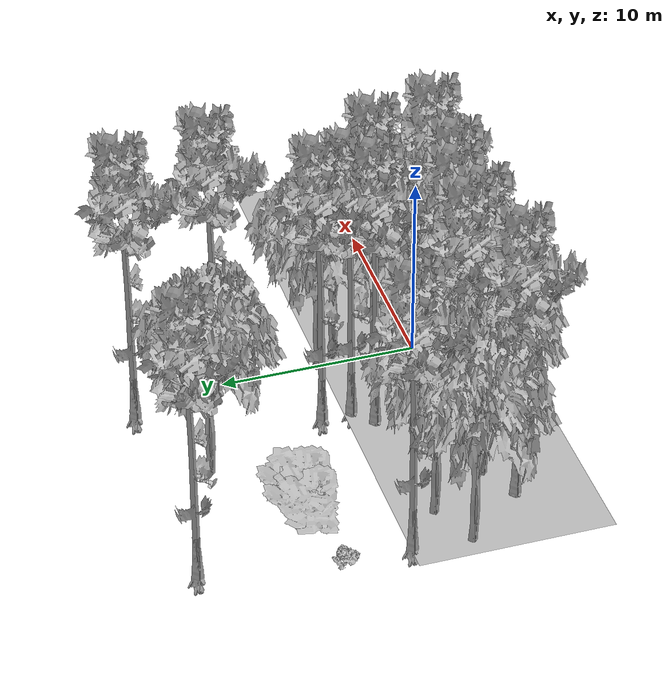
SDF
<sdf version="1.7">
 <world name="default">
  <model name="ground_plane">
   <static>1</static>
   <link name="link">
    <collision name="collision">
     <pose>-50 0 0 0 -0 0</pose>
     <geometry><plane><normal>0 0 1</normal><size>100 100</size></plane></geometry>
     <surface><contact><ode><min_depth>0.01</min_depth><max_vel>0</max_vel></ode></contact></surface>
    </collision>
    <visual name="grass">
     <cast_shadows>0</cast_shadows>
     <geometry>
      <mesh>
       <scale>0.5814285714285714 0.18142857142857144 0.1</scale>
       <uri>file://grass_plane/meshes/grass_plane.dae</uri>
      </mesh>
     </geometry>
    </visual>
   </link>
  </model>
  <model name="Tree 6">
   <static>1</static>
   <pose>-6.70449100990713 0.2744432947563489 0 1.57079 -0 0</pose>
   <link name="link">
    <collision name="collision">
     <geometry><mesh><scale>3.5 5 3.5</scale><uri>model://tree_9/meshes/tree_9.obj</uri></mesh></geometry>
    </collision>
    <visual name="visual">
     <geometry><mesh><scale>3.5 5 3.5</scale><uri>model://tree_9/meshes/tree_9.obj</uri></mesh></geometry>
    </visual>
   </link>
  </model>
  <model name="Tree 11">
   <static>1</static>
   <pose>0.4460111221063201 4.064509342091682 0 1.57079 -0 0</pose>
   <link name="link">
    <collision name="collision">
     <geometry><mesh><scale>3.5 5 3.5</scale><uri>model://tree_2/meshes/tree_2.obj</uri></mesh></geometry>
    </collision>
    <visual name="visual">
     <geometry><mesh><scale>3.5 5 3.5</scale><uri>model://tree_2/meshes/tree_2.obj</uri></mesh></geometry>
    </visual>
   </link>
  </model>
  <model name="Tree 34">
   <static>1</static>
   <pose>-0.9329228267085838 -0.6044625621240236 0 1.57079 -0 0</pose>
   <link name="link">
    <collision name="collision">
     <geometry><mesh><scale>3.5 5 3.5</scale><uri>model://tree_9/meshes/tree_9.obj</uri></mesh></geometry>
    </collision>
    <visual name="visual">
     <geometry><mesh><scale>3.5 5 3.5</scale><uri>model://tree_9/meshes/tree_9.obj</uri></mesh></geometry>
    </visual>
   </link>
  </model>
  <model name="Tree 49">
   <static>1</static>
   <pose>-8.68725277571454 -0.3586828510962885 0 1.57079 -0 0</pose>
   <link name="link">
    <collision name="collision">
     <geometry><mesh><scale>3.5 5 3.5</scale><uri>model://tree_9/meshes/tree_9.obj</uri></mesh></geometry>
    </collision>
    <visual name="visual">
     <geometry><mesh><scale>3.5 5 3.5</scale><uri>model://tree_9/meshes/tree_9.obj</uri></mesh></geometry>
    </visual>
   </link>
  </model>
  <model name="Tree 57">
   <static>1</static>
   <pose>-12.216960090218912 -1.0834433556187388 0 1.57079 -0 0</pose>
   <link name="link">
    <collision name="collision">
     <geometry><mesh><scale>3.5 5 3.5</scale><uri>model://tree_9/meshes/tree_9.obj</uri></mesh></geometry>
    </collision>
    <visual name="visual">
     <geometry><mesh><scale>3.5 5 3.5</scale><uri>model://tree_9/meshes/tree_9.obj</uri></mesh></geometry>
    </visual>
   </link>
  </model>
  <model name="Tree 69">
   <static>1</static>
   <pose>-1.711803554666865 2.636600405127048 0 1.57079 -0 0</pose>
   <link name="link">
    <collision name="collision">
     <geometry><mesh><scale>3.5 5 3.5</scale><uri>model://tree_9/meshes/tree_9.obj</uri></mesh></geometry>
    </collision>
    <visual name="visual">
     <geometry><mesh><scale>3.5 5 3.5</scale><uri>model://tree_9/meshes/tree_9.obj</uri></mesh></geometry>
    </visual>
   </link>
  </model>
  <model name="Tree 91">
   <static>1</static>
   <pose>-0.1701669013958309 5.049506634017561 0 1.57079 -0 0</pose>
   <link name="link">
    <collision name="collision">
     <geometry><mesh><scale>3.5 5 3.5</scale><uri>model://tree_2/meshes/tree_2.obj</uri></mesh></geometry>
    </collision>
    <visual name="visual">
     <geometry><mesh><scale>3.5 5 3.5</scale><uri>model://tree_2/meshes/tree_2.obj</uri></mesh></geometry>
    </visual>
   </link>
  </model>
  <model name="Tree 92">
   <static>1</static>
   <pose>-10.389895894531868 -0.13853641520758764 0 1.57079 -0 0</pose>
   <link name="link">
    <collision name="collision">
     <geometry><mesh><scale>3.5 5 3.5</scale><uri>model://tree_2/meshes/tree_2.obj</uri></mesh></geometry>
    </collision>
    <visual name="visual">
     <geometry><mesh><scale>3.5 5 3.5</scale><uri>model://tree_2/meshes/tree_2.obj</uri></mesh></geometry>
    </visual>
   </link>
  </model>
  <model name="Tree 103">
   <static>1</static>
   <pose>-4.1765224972951245 6.069118419910115 0 1.57079 -0 0</pose>
   <link name="link">
    <collision name="collision">
     <geometry><mesh><scale>3.5 5 3.5</scale><uri>model://tree_9/meshes/tree_9.obj</uri></mesh></geometry>
    </collision>
    <visual name="visual">
     <geometry><mesh><scale>3.5 5 3.5</scale><uri>model://tree_9/meshes/tree_9.obj</uri></mesh></geometry>
    </visual>
   </link>
  </model>
  <model name="Tree 130">
   <static>1</static>
   <pose>-1.369613855172986 14.808199776859723 0 1.57079 -0 0</pose>
   <link name="link">
    <collision name="collision">
     <geometry><mesh><scale>3.5 5 3.5</scale><uri>model://tree_9/meshes/tree_9.obj</uri></mesh></geometry>
    </collision>
    <visual name="visual">
     <geometry><mesh><scale>3.5 5 3.5</scale><uri>model://tree_9/meshes/tree_9.obj</uri></mesh></geometry>
    </visual>
   </link>
  </model>
  <model name="Tree 137">
   <static>1</static>
   <pose>-9.715381356588082 8.65770592591955 0 1.57079 -0 0</pose>
   <link name="link">
    <collision name="collision">
     <geometry><mesh><scale>3 2 3</scale><uri>model://tree_3/meshes/tree_3.obj</uri></mesh></geometry>
    </collision>
    <visual name="visual">
     <geometry><mesh><scale>3 2 3</scale><uri>model://tree_3/meshes/tree_3.obj</uri></mesh></geometry>
    </visual>
   </link>
  </model>
  <model name="Tree 140">
   <static>1</static>
   <pose>-4.65615664956303 -0.4317618270799688 0 1.57079 -0 0</pose>
   <link name="link">
    <collision name="collision">
     <geometry><mesh><scale>3.5 5 3.5</scale><uri>model://tree_9/meshes/tree_9.obj</uri></mesh></geometry>
    </collision>
    <visual name="visual">
     <geometry><mesh><scale>3.5 5 3.5</scale><uri>model://tree_9/meshes/tree_9.obj</uri></mesh></geometry>
    </visual>
   </link>
  </model>
  <model name="Tree 149">
   <static>1</static>
   <pose>-14.637661050118503 4.884878542224847 0 1.57079 -0 0</pose>
   <link name="link">
    <collision name="collision">
     <geometry><mesh><scale>3.5 5 3.5</scale><uri>model://tree_9/meshes/tree_9.obj</uri></mesh></geometry>
    </collision>
    <visual name="visual">
     <geometry><mesh><scale>3.5 5 3.5</scale><uri>model://tree_9/meshes/tree_9.obj</uri></mesh></geometry>
    </visual>
   </link>
  </model>
  <model name="Tree 181">
   <static>1</static>
   <pose>-5.114270952263304 3.632995976373813 0 1.57079 -0 0</pose>
   <link name="link">
    <collision name="collision">
     <geometry><mesh><scale>3.5 5 3.5</scale><uri>model://tree_9/meshes/tree_9.obj</uri></mesh></geometry>
    </collision>
    <visual name="visual">
     <geometry><mesh><scale>3.5 5 3.5</scale><uri>model://tree_9/meshes/tree_9.obj</uri></mesh></geometry>
    </visual>
   </link>
  </model>
  <model name="Tree 209">
   <static>1</static>
   <pose>-4.094361583257069 4.539546321749551 0 1.57079 -0 0</pose>
   <link name="link">
    <collision name="collision">
     <geometry><mesh><scale>3.5 5 3.5</scale><uri>model://tree_9/meshes/tree_9.obj</uri></mesh></geometry>
    </collision>
    <visual name="visual">
     <geometry><mesh><scale>3.5 5 3.5</scale><uri>model://tree_9/meshes/tree_9.obj</uri></mesh></geometry>
    </visual>
   </link>
  </model>
  <model name="Tree 212">
   <static>1</static>
   <pose>-13.564030680736785 14.936893451787075 0 1.57079 -0 0</pose>
   <link name="link">
    <collision name="collision">
     <geometry><mesh><scale>3.5 5 3.5</scale><uri>model://tree_9/meshes/tree_9.obj</uri></mesh></geometry>
    </collision>
    <visual name="visual">
     <geometry><mesh><scale>3.5 5 3.5</scale><uri>model://tree_9/meshes/tree_9.obj</uri></mesh></geometry>
    </visual>
   </link>
  </model>
  <model name="Tree 224">
   <static>1</static>
   <pose>-8.142848231711731 -1.0212865355472331 0 1.57079 -0 0</pose>
   <link name="link">
    <collision name="collision">
     <geometry><mesh><scale>3.5 5 3.5</scale><uri>model://tree_2/meshes/tree_2.obj</uri></mesh></geometry>
    </collision>
    <visual name="visual">
     <geometry><mesh><scale>3.5 5 3.5</scale><uri>model://tree_2/meshes/tree_2.obj</uri></mesh></geometry>
    </visual>
   </link>
  </model>
  <model name="Tree 241">
   <static>1</static>
   <pose>-11.127843090984626 8.740613129293884 0 1.57079 -0 0</pose>
   <link name="link">
    <collision name="collision">
     <geometry><mesh><scale>3 2 3</scale><uri>model://tree_3/meshes/tree_3.obj</uri></mesh></geometry>
    </collision>
    <visual name="visual">
     <geometry><mesh><scale>3 2 3</scale><uri>model://tree_3/meshes/tree_3.obj</uri></mesh></geometry>
    </visual>
   </link>
  </model>
  <model name="Tree 244">
   <static>1</static>
   <pose>-14.841238161959389 1.9010174820366004 0 1.57079 -0 0</pose>
   <link name="link">
    <collision name="collision">
     <geometry><mesh><scale>3.5 5 3.5</scale><uri>model://tree_2/meshes/tree_2.obj</uri></mesh></geometry>
    </collision>
    <visual name="visual">
     <geometry><mesh><scale>3.5 5 3.5</scale><uri>model://tree_2/meshes/tree_2.obj</uri></mesh></geometry>
    </visual>
   </link>
  </model>
  <model name="Tree 257">
   <static>1</static>
   <pose>-6.530395184953477 12.350167822471967 0 1.57079 -0 0</pose>
   <link name="link">
    <collision name="collision">
     <geometry><mesh><scale>3.5 5 3.5</scale><uri>model://tree_2/meshes/tree_2.obj</uri></mesh></geometry>
    </collision>
    <visual name="visual">
     <geometry><mesh><scale>3.5 5 3.5</scale><uri>model://tree_2/meshes/tree_2.obj</uri></mesh></geometry>
    </visual>
   </link>
  </model>
  <model name="Tree 269">
   <static>1</static>
   <pose>-12.428774240853755 2.9901078879203524 0 1.57079 -0 0</pose>
   <link name="link">
    <collision name="collision">
     <geometry><mesh><scale>3.5 5 3.5</scale><uri>model://tree_2/meshes/tree_2.obj</uri></mesh></geometry>
    </collision>
    <visual name="visual">
     <geometry><mesh><scale>3.5 5 3.5</scale><uri>model://tree_2/meshes/tree_2.obj</uri></mesh></geometry>
    </visual>
   </link>
  </model>
  <model name="Tree 274">
   <static>1</static>
   <pose>-1.5916250095783013 0.15824177069006673 0 1.57079 -0 0</pose>
   <link name="link">
    <collision name="collision">
     <geometry><mesh><scale>3.5 5 3.5</scale><uri>model://tree_2/meshes/tree_2.obj</uri></mesh></geometry>
    </collision>
    <visual name="visual">
     <geometry><mesh><scale>3.5 5 3.5</scale><uri>model://tree_2/meshes/tree_2.obj</uri></mesh></geometry>
    </visual>
   </link>
  </model>
  <model name="Tree 283">
   <static>1</static>
   <pose>-9.33699045969179 0.6110408163398731 0 1.57079 -0 0</pose>
   <link name="link">
    <collision name="collision">
     <geometry><mesh><scale>3.5 5 3.5</scale><uri>model://tree_9/meshes/tree_9.obj</uri></mesh></geometry>
    </collision>
    <visual name="visual">
     <geometry><mesh><scale>3.5 5 3.5</scale><uri>model://tree_9/meshes/tree_9.obj</uri></mesh></geometry>
    </visual>
   </link>
  </model>
  <model name="Tree 295">
   <static>1</static>
   <pose>-0.400397168516875 10.400137558089035 0 1.57079 -0 0</pose>
   <link name="link">
    <collision name="collision">
     <geometry><mesh><scale>3.5 5 3.5</scale><uri>model://tree_9/meshes/tree_9.obj</uri></mesh></geometry>
    </collision>
    <visual name="visual">
     <geometry><mesh><scale>3.5 5 3.5</scale><uri>model://tree_9/meshes/tree_9.obj</uri></mesh></geometry>
    </visual>
   </link>
  </model>
  <model name="Bush 0">
   <static>1</static>
   <pose>-14.510999188527471 8.130222543826484 0 1.57079 -0 0</pose>
   <link name="link">
    <collision name="collision">
     <geometry><mesh><scale>2 2 2</scale><uri>model://bush_3/meshes/bush_3.obj</uri></mesh></geometry>
     <surface><contact><collide_without_contact>false</collide_without_contact></contact></surface>
    </collision>
    <visual name="visual">
     <geometry><mesh><scale>2 2 2</scale><uri>model://bush_3/meshes/bush_3.obj</uri></mesh></geometry>
    </visual>
   </link>
  </model>
 </world>
</sdf>
